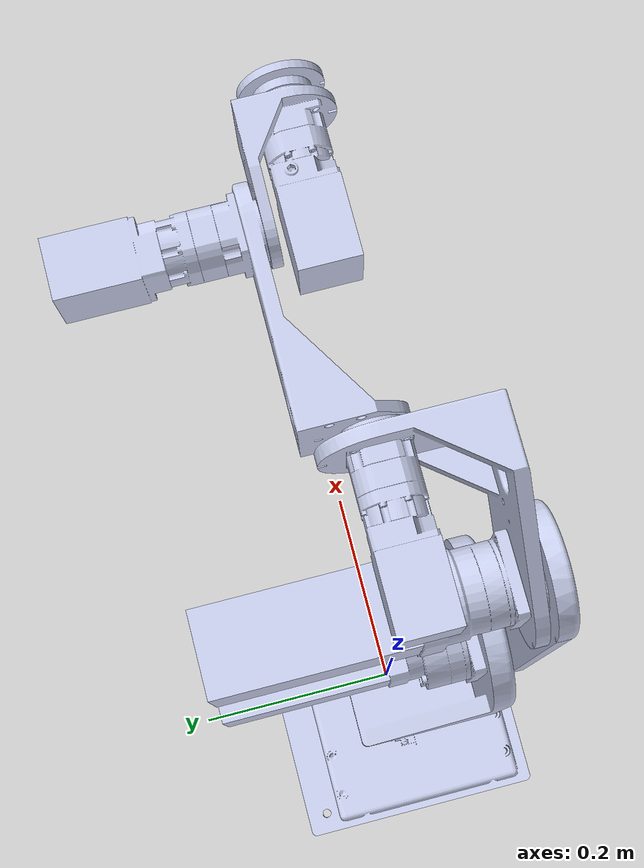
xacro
<?xml version="1.0"?>
<!-- NexCOBOT MiniBOT -->
<robot name="minibot" xmlns:xacro="http://www.ros.org/wiki/xacro">

  <!-- Constants for robot dimensions -->
  <xacro:property name="PI" value="3.1415926535897931"/>
  <xacro:property name="deg" value="0.017453293"/> <!-- Degrees to Radians -->
  <!-- assumption value for mass -->
  <xacro:property name="mass0" value="3.0361"/>
  <xacro:property name="mass1" value="1.8294"/>
  <xacro:property name="mass2" value="1.199"/>
  <xacro:property name="mass3" value="0.41277"/>
  <xacro:property name="mass4" value="0.34299"/>
  <xacro:property name="mass5" value="0.24686"/>
  <xacro:property name="mass6" value="0.024508"/>
  <!-- Joint velocity and acceleration in degree -->
  <xacro:property name="vel" value="50"/>
  <xacro:property name="acc" value="20"/>

  <!-- Import all Gazebo-customization elements, including Gazebo colors -->
  <xacro:include filename="$(find minibot_support)/urdf/minibot.gazebo" />

  <!-- Add a world link to fix rbot to Gazebo 'base_link' -->
  <link name="world"/>

  <joint name="fixed_base_joint" type="fixed">
    <parent link="world"/>
    <child link="base_link"/>
    <origin xyz="0 0 0" rpy="0 0 0"/>
  </joint>

  <!-- Start the description of robot -->
  <link name="base_link">
    <inertial>
      <origin xyz="-0.0209 0.014014 0.10674" rpy="0 0 0" />
      <mass value="${mass0}" />
      <inertia
        ixx="0.029082" ixy="0.00017866" ixz="-0.00069921"
        iyy="0.034115" iyz="-2.7854E-05"
        izz="0.024101" />
    </inertial>
    <visual>
      <origin xyz="0 0 0" rpy="0 0 0" />
      <geometry>
        <mesh filename="package://minibot_support/meshes/base_link.STL" />
      </geometry>
      <material name="">
        <color rgba="0.79216 0.81961 0.93333 1" />
      </material>
    </visual>
    <collision>
      <origin xyz="0 0 0" rpy="0 0 0" />
      <geometry>
        <mesh filename="package://minibot_support/meshes/base_link.STL" />
      </geometry>
    </collision>
  </link>

  <link name="A1_Link">
    <inertial>
      <origin xyz="0.00013196 -0.0051908 -0.026476" rpy="0 0 0" />
      <mass value="${mass1}" />
      <inertia
        ixx="0.012589" ixy="1.9683E-05" ixz="1.2814E-05"
        iyy="0.0065171" iyz="-0.00097038"
        izz="0.010664" />
    </inertial>
    <visual>
      <origin xyz="0 0 0" rpy="0 0 0" />
      <geometry>
        <mesh filename="package://minibot_support/meshes/A1_Link.STL" />
      </geometry>
      <material name="">
        <color rgba="0.79216 0.81961 0.93333 1" />
      </material>
    </visual>
    <collision>
      <origin xyz="0 0 0" rpy="0 0 0" />
      <geometry>
        <mesh filename="package://minibot_support/meshes/A1_Link.STL" />
      </geometry>
    </collision>
  </link>

  <joint name="Joint1" type="revolute">
    <origin xyz="0 0 0.339" rpy="0 0 0" />
    <parent link="base_link" />
    <child link="A1_Link" />
    <axis xyz="0 0 1" />
    <limit lower="-2.617993878" upper="3.019419606" effort="${acc*deg}" velocity="${vel*deg}" />
    <dynamics damping="0.7"/>
  </joint>

  <link name="A2_Link">
    <inertial>
      <origin xyz="0.20665 0.00010564 0.010623" rpy="0 0 0" />
      <mass value="${mass2}" />
      <inertia
        ixx="0.0082944" ixy="3.8291E-06" ixz="0.0043024"
        iyy="0.015732" iyz="-8.8505E-06"
        izz="0.0085276" />
    </inertial>
    <visual>
      <origin xyz="0 0 0" rpy="0 0 0" />
      <geometry>
        <mesh filename="package://minibot_support/meshes/A2_Link.STL" />
      </geometry>
      <material
        name="">
        <color rgba="0.79216 0.81961 0.93333 1" />
      </material>
    </visual>
    <collision>
      <origin xyz="0 0 0" rpy="0 0 0" />
      <geometry>
        <mesh filename="package://minibot_support/meshes/A2_Link.STL" />
      </geometry>
    </collision>
  </link>

  <joint name="Joint2" type="revolute">
    <origin xyz="0 0 0" rpy="1.5708 -1.5708 0" />
    <parent link="A1_Link" />
    <child link="A2_Link" />
    <axis xyz="0 0 1" />
    <limit lower="-1.6057029118" upper="1.9198621772" effort="${acc*deg}" velocity="${vel*deg}" />
    <dynamics damping="0.7"/>
  </joint>

  <link name="A3_Link">
    <inertial>
      <origin xyz="0.059711 -0.045937 0.026993" rpy="0 0 0" />
      <mass value="${mass3}" />
      <inertia
        ixx="0.0012728" ixy="0.00014125" ixz="0.00020523"
        iyy="0.00091925" iyz="-1.0099E-05"
        izz="0.001128" />
    </inertial>
    <visual>
      <origin xyz="0 0 0" rpy="0 0 0" />
      <geometry>
        <mesh filename="package://minibot_support/meshes/A3_Link.STL" />
      </geometry>
      <material name="">
        <color rgba="0.79216 0.81961 0.93333 1" />
      </material>
    </visual>
    <collision>
      <origin xyz="0 0 0" rpy="0 0 0" />
      <geometry>
        <mesh filename="package://minibot_support/meshes/A3_Link.STL" />
      </geometry>
    </collision>
  </link>

  <joint name="Joint3" type="revolute">
    <origin xyz="0.25 0 0" rpy="-2.2725E-16 -5.2703E-15 1.4452E-30" />
    <parent link="A2_Link" />
    <child link="A3_Link" />
    <axis xyz="0 0 1" />
    <limit lower="-1.0821041362" upper="2.5307274154" effort="${acc*deg}" velocity="${vel*deg}" />
    <dynamics damping="0.7"/>
  </joint>

  <link name="A4_Link">
    <inertial>
      <origin xyz="0.00042233 -0.079522 -0.032498" rpy="0 0 0" />
      <mass value="${mass4}" />
      <inertia
        ixx="0.001756" ixy="-5.3895E-06" ixz="3.2318E-06"
        iyy="0.001026" iyz="0.00055859"
        izz="0.00089914" />
    </inertial>
    <visual>
      <origin xyz="0 0 0" rpy="0 0 0" />
      <geometry>
        <mesh filename="package://minibot_support/meshes/A4_Link.STL" />
      </geometry>
      <material name="">
        <color rgba="0.79216 0.81961 0.93333 1" />
      </material>
    </visual>
    <collision>
      <origin xyz="0 0 0" rpy="0 0 0" />
      <geometry>
        <mesh filename="package://minibot_support/meshes/A4_Link.STL" />
      </geometry>
    </collision>
  </link>

  <joint name="Joint4" type="revolute">
    <origin xyz="0.07 -0.25 0" rpy="1.5708 3.1178E-08 -6.8815E-16" />
    <parent link="A3_Link" />
    <child link="A4_Link" />
    <axis xyz="0 0 1" />
    <limit lower="-2.0943951024" upper="3.0805061298" effort="${acc*deg}" velocity="${vel*deg}" />
    <dynamics damping="0.7"/>
  </joint>

  <link name="A5_Link">
    <inertial>
      <origin xyz="0.00046447 -0.023653 -0.0050734" rpy="0 0 0" />
      <mass value="${mass5}" />
      <inertia
        ixx="0.00038298" ixy="3.7652E-06" ixz="2.2688E-06"
        iyy="0.00010941" iyz="-1.3541E-05"
        izz="0.00036694" />
    </inertial>
    <visual>
      <origin xyz="0 0 0" rpy="0 0 0" />
      <geometry>
        <mesh filename="package://minibot_support/meshes/A5_Link.STL" />
      </geometry>
      <material name="">
        <color rgba="0.79216 0.81961 0.93333 1" />
      </material>
    </visual>
    <collision>
      <origin xyz="0 0 0" rpy="0 0 0" />
      <geometry>
        <mesh filename="package://minibot_support/meshes/A5_Link.STL" />
      </geometry>
    </collision>
  </link>

  <joint name="Joint5" type="revolute">
    <origin xyz="0 0 0" rpy="-1.5708 -1.6127E-15 0" />
    <parent link="A4_Link" />
    <child link="A5_Link" />
    <axis xyz="0 0 1" />
    <limit lower="-1.8325957146" upper="1.8325957146" effort="${acc*deg}" velocity="${vel*deg}" />
    <dynamics damping="0.7"/>
  </joint>

  <link name="A6_Link">
    <inertial>
      <origin xyz="0.00014188 -5.3914E-05 -0.0038782" rpy="0 0 0" />
      <mass value="${mass6}" />
      <inertia
        ixx="4.4973E-06" ixy="6.675E-10" ixz="-3.4479E-09"
        iyy="4.4429E-06" iyz="1.4991E-09"
        izz="8.2691E-06" />
    </inertial>
    <visual>
      <origin xyz="0 0 0" rpy="0 0 0" />
      <geometry>
        <mesh filename="package://minibot_support/meshes/A6_Link.STL" />
      </geometry>
      <material name="">
        <color rgba="0.79216 0.81961 0.93333 1" />
      </material>
    </visual>
    <collision>
      <origin xyz="0 0 0" rpy="0 0 0" />
      <geometry>
        <mesh filename="package://minibot_support/meshes/A6_Link.STL" />
      </geometry>
    </collision>
  </link>

  <joint name="Joint6" type="continuous">
    <origin xyz="0 -0.095 0" rpy="1.5708 -3.1178E-08 6.6325E-13" />
    <parent link="A5_Link" />
    <child link="A6_Link" />
    <axis xyz="0 0 1" />
    <limit lower="-3.1415926536" upper="3.1415926536" effort="${acc*deg}" velocity="${vel*deg}" />
    <dynamics damping="0.7"/>
  </joint>

  <!--  Transmission Setup for Gazebo Control  -->
  <transmission name="tran1">
    <type>transmission_interface/SimpleTransmission</type>
    <joint name="Joint1">
      <hardwareInterface>hardware_interface/PositionJointInterface</hardwareInterface>
    </joint>
    <actuator name="motor_1">
      <hardwareInterface>hardware_interface/PositionJointInterface</hardwareInterface>
      <mechanicalReduction>33</mechanicalReduction>
    </actuator>
  </transmission>

  <transmission name="tran2">
    <type>transmission_interface/SimpleTransmission</type>
    <joint name="Joint2">
      <hardwareInterface>hardware_interface/PositionJointInterface</hardwareInterface>
    </joint>
    <actuator name="motor_2">
      <hardwareInterface>hardware_interface/PositionJointInterface</hardwareInterface>
      <mechanicalReduction>33</mechanicalReduction>
    </actuator>
  </transmission>

  <transmission name="tran3">
    <type>transmission_interface/SimpleTransmission</type>
    <joint name="Joint3">
      <hardwareInterface>hardware_interface/PositionJointInterface</hardwareInterface>
    </joint>
    <actuator name="motor_3">
      <hardwareInterface>hardware_interface/PositionJointInterface</hardwareInterface>
      <mechanicalReduction>33</mechanicalReduction>
    </actuator>
  </transmission>

  <transmission name="tran4">
    <type>transmission_interface/SimpleTransmission</type>
    <joint name="Joint4">
      <hardwareInterface>hardware_interface/PositionJointInterface</hardwareInterface>
    </joint>
    <actuator name="motor_4">
      <hardwareInterface>hardware_interface/PositionJointInterface</hardwareInterface>
      <mechanicalReduction>25</mechanicalReduction>
    </actuator>
  </transmission>

  <transmission name="tran5">
    <type>transmission_interface/SimpleTransmission</type>
    <joint name="Joint5">
      <hardwareInterface>hardware_interface/PositionJointInterface</hardwareInterface>
    </joint>
    <actuator name="motor_5">
      <hardwareInterface>hardware_interface/PositionJointInterface</hardwareInterface>
      <mechanicalReduction>20</mechanicalReduction>
    </actuator>
  </transmission>

  <transmission name="tran6">
    <type>transmission_interface/SimpleTransmission</type>
    <joint name="Joint6">
      <hardwareInterface>hardware_interface/PositionJointInterface</hardwareInterface>
    </joint>
    <actuator name="motor_6">
      <hardwareInterface>hardware_interface/PositionJointInterface</hardwareInterface>
      <mechanicalReduction>10</mechanicalReduction>
    </actuator>
  </transmission>

</robot>
